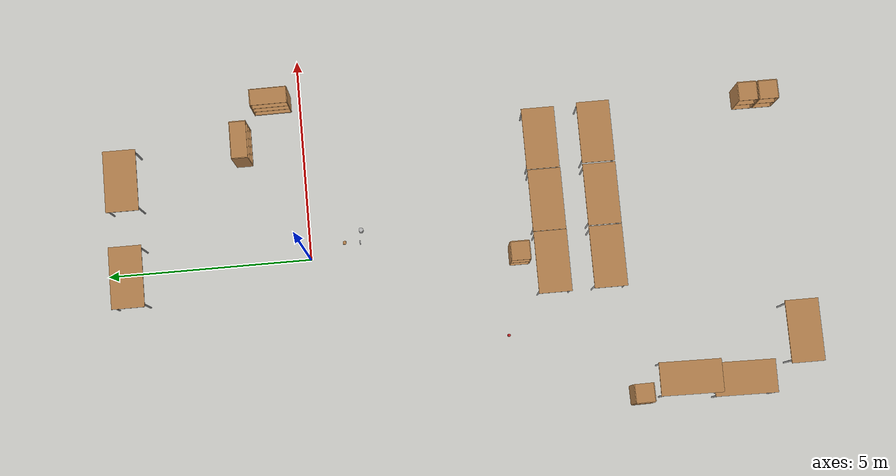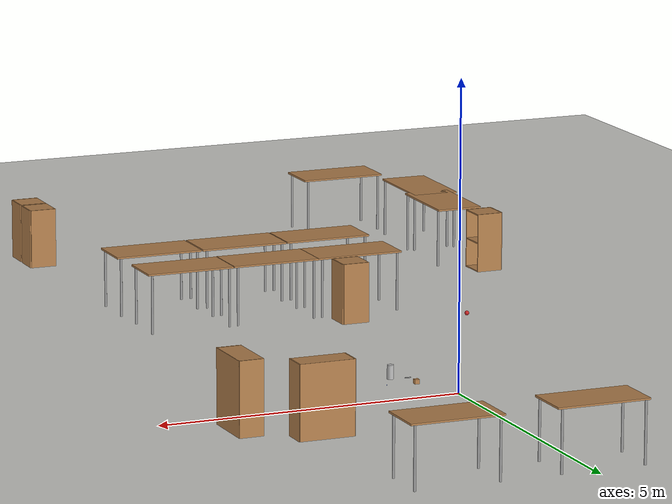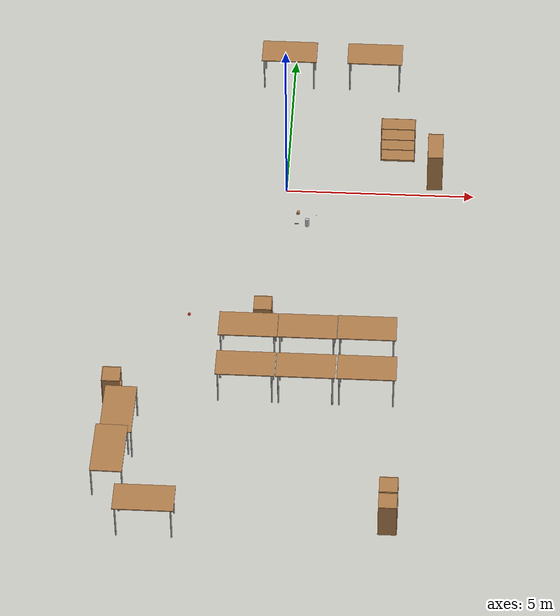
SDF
<sdf version="1.6">
 <world name="default">
  <light name="sun" type="directional">
   <pose>0 0 10 0 -0 0</pose>
   <diffuse>0.8 0.8 0.8 1</diffuse>
   <specular>0.2 0.2 0.2 1</specular>
   <attenuation>
    <range>1000</range>
    <constant>0.9</constant>
    <linear>0.01</linear>
    <quadratic>0.001</quadratic>
   </attenuation>
   <direction>-0.5 0.1 -0.9</direction>
  </light>
  <model name="ground_plane">
   <static>1</static>
   <link name="link">
    <collision name="collision">
     <geometry><plane><normal>0 0 1</normal><size>100 100</size></plane></geometry>
     <surface>
      <contact><collide_bitmask>65535</collide_bitmask></contact>
      <friction><ode><mu>100</mu><mu2>50</mu2></ode></friction>
     </surface>
    </collision>
    <visual name="visual">
     <cast_shadows>0</cast_shadows>
     <geometry><plane><normal>0 0 1</normal><size>100 100</size></plane></geometry>
     <material>
      <script><uri>file://media/materials/scripts/gazebo.material</uri><name>Gazebo/CeilingTiled</name></script>
     </material>
    </visual>
   </link>
  </model>
  <gravity>0 0 -9.8</gravity>
  <magnetic_field>6e-06 2.3e-05 -4.2e-05</magnetic_field>
  <atmosphere type="adiabatic"/>
  <physics name="default_physics" default="0" type="bullet">
   <max_step_size>0.001</max_step_size>
   <real_time_factor>1</real_time_factor>
   <real_time_update_rate>1000</real_time_update_rate>
  </physics>
  <scene><ambient>0.4 0.4 0.4 1</ambient><background>0.7 0.7 0.7 1</background><shadows>1</shadows></scene>
  <audio><device>default</device></audio>
  <spherical_coordinates>
   <surface_model>EARTH_WGS84</surface_model>
   <latitude_deg>0</latitude_deg>
   <longitude_deg>0</longitude_deg>
   <elevation>0</elevation>
   <heading_deg>0</heading_deg>
  </spherical_coordinates>
  <model name="bookshelf">
   <static>1</static>
   <link name="link">
    <inertial><mass>1</mass></inertial>
    <collision name="back">
     <pose>0 0.005 0.6 0 -0 0</pose>
     <geometry><box><size>0.9 0.01 1.2</size></box></geometry>
    </collision>
    <visual name="visual1">
     <pose>0 0.005 0.6 0 -0 0</pose>
     <geometry><box><size>0.9 0.01 1.2</size></box></geometry>
     <material>
      <script><uri>file://media/materials/scripts/gazebo.material</uri><name>Gazebo/Wood</name></script>
     </material>
    </visual>
    <collision name="left_side">
     <pose>0.45 -0.195 0.6 0 -0 0</pose>
     <geometry><box><size>0.02 0.4 1.2</size></box></geometry>
    </collision>
    <visual name="visual2">
     <pose>0.45 -0.195 0.6 0 -0 0</pose>
     <geometry><box><size>0.02 0.4 1.2</size></box></geometry>
     <material>
      <script><uri>file://media/materials/scripts/gazebo.material</uri><name>Gazebo/Wood</name></script>
     </material>
    </visual>
    <collision name="right_side">
     <pose>-0.45 -0.195 0.6 0 -0 0</pose>
     <geometry><box><size>0.02 0.4 1.2</size></box></geometry>
    </collision>
    <visual name="visual3">
     <pose>-0.45 -0.195 0.6 0 -0 0</pose>
     <geometry><box><size>0.02 0.4 1.2</size></box></geometry>
     <material>
      <script><uri>file://media/materials/scripts/gazebo.material</uri><name>Gazebo/Wood</name></script>
     </material>
    </visual>
    <collision name="bottom">
     <pose>0 -0.195 0.03 0 -0 0</pose>
     <geometry><box><size>0.88 0.4 0.06</size></box></geometry>
    </collision>
    <visual name="visual4">
     <pose>0 -0.195 0.03 0 -0 0</pose>
     <geometry><box><size>0.88 0.4 0.06</size></box></geometry>
     <material>
      <script><uri>file://media/materials/scripts/gazebo.material</uri><name>Gazebo/Wood</name></script>
     </material>
    </visual>
    <collision name="top">
     <pose>0 -0.195 1.19 0 -0 0</pose>
     <geometry><box><size>0.88 0.4 0.02</size></box></geometry>
    </collision>
    <visual name="visual5">
     <pose>0 -0.195 1.19 0 -0 0</pose>
     <geometry><box><size>0.88 0.4 0.02</size></box></geometry>
     <material>
      <script><uri>file://media/materials/scripts/gazebo.material</uri><name>Gazebo/Wood</name></script>
     </material>
    </visual>
    <collision name="low_shelf">
     <pose>0 -0.195 0.43 0 -0 0</pose>
     <geometry><box><size>0.88 0.4 0.02</size></box></geometry>
    </collision>
    <visual name="visual6">
     <pose>0 -0.195 0.43 0 -0 0</pose>
     <geometry><box><size>0.88 0.4 0.02</size></box></geometry>
     <material>
      <script><uri>file://media/materials/scripts/gazebo.material</uri><name>Gazebo/Wood</name></script>
     </material>
    </visual>
    <collision name="high_shelf">
     <pose>0 -0.195 0.8 0 -0 0</pose>
     <geometry><box><size>0.88 0.4 0.02</size></box></geometry>
    </collision>
    <visual name="visual7">
     <pose>0 -0.195 0.8 0 -0 0</pose>
     <geometry><box><size>0.88 0.4 0.02</size></box></geometry>
     <material>
      <script><uri>file://media/materials/scripts/gazebo.material</uri><name>Gazebo/Wood</name></script>
     </material>
    </visual>
   </link>
   <pose>2.92455 1.66571 0 0 -0 0</pose>
  </model>
  <model name="bookshelf_clone">
   <static>1</static>
   <link name="link">
    <inertial><mass>1</mass></inertial>
    <collision name="back">
     <pose>0 0.005 0.6 0 -0 0</pose>
     <geometry><box><size>0.9 0.01 1.2</size></box></geometry>
    </collision>
    <visual name="visual1">
     <pose>0 0.005 0.6 0 -0 0</pose>
     <geometry><box><size>0.9 0.01 1.2</size></box></geometry>
     <material>
      <script><uri>file://media/materials/scripts/gazebo.material</uri><name>Gazebo/Wood</name></script>
     </material>
    </visual>
    <collision name="left_side">
     <pose>0.45 -0.195 0.6 0 -0 0</pose>
     <geometry><box><size>0.02 0.4 1.2</size></box></geometry>
    </collision>
    <visual name="visual2">
     <pose>0.45 -0.195 0.6 0 -0 0</pose>
     <geometry><box><size>0.02 0.4 1.2</size></box></geometry>
     <material>
      <script><uri>file://media/materials/scripts/gazebo.material</uri><name>Gazebo/Wood</name></script>
     </material>
    </visual>
    <collision name="right_side">
     <pose>-0.45 -0.195 0.6 0 -0 0</pose>
     <geometry><box><size>0.02 0.4 1.2</size></box></geometry>
    </collision>
    <visual name="visual3">
     <pose>-0.45 -0.195 0.6 0 -0 0</pose>
     <geometry><box><size>0.02 0.4 1.2</size></box></geometry>
     <material>
      <script><uri>file://media/materials/scripts/gazebo.material</uri><name>Gazebo/Wood</name></script>
     </material>
    </visual>
    <collision name="bottom">
     <pose>0 -0.195 0.03 0 -0 0</pose>
     <geometry><box><size>0.88 0.4 0.06</size></box></geometry>
    </collision>
    <visual name="visual4">
     <pose>0 -0.195 0.03 0 -0 0</pose>
     <geometry><box><size>0.88 0.4 0.06</size></box></geometry>
     <material>
      <script><uri>file://media/materials/scripts/gazebo.material</uri><name>Gazebo/Wood</name></script>
     </material>
    </visual>
    <collision name="top">
     <pose>0 -0.195 1.19 0 -0 0</pose>
     <geometry><box><size>0.88 0.4 0.02</size></box></geometry>
    </collision>
    <visual name="visual5">
     <pose>0 -0.195 1.19 0 -0 0</pose>
     <geometry><box><size>0.88 0.4 0.02</size></box></geometry>
     <material>
      <script><uri>file://media/materials/scripts/gazebo.material</uri><name>Gazebo/Wood</name></script>
     </material>
    </visual>
    <collision name="low_shelf">
     <pose>0 -0.195 0.43 0 -0 0</pose>
     <geometry><box><size>0.88 0.4 0.02</size></box></geometry>
    </collision>
    <visual name="visual6">
     <pose>0 -0.195 0.43 0 -0 0</pose>
     <geometry><box><size>0.88 0.4 0.02</size></box></geometry>
     <material>
      <script><uri>file://media/materials/scripts/gazebo.material</uri><name>Gazebo/Wood</name></script>
     </material>
    </visual>
    <collision name="high_shelf">
     <pose>0 -0.195 0.8 0 -0 0</pose>
     <geometry><box><size>0.88 0.4 0.02</size></box></geometry>
    </collision>
    <visual name="visual7">
     <pose>0 -0.195 0.8 0 -0 0</pose>
     <geometry><box><size>0.88 0.4 0.02</size></box></geometry>
     <material>
      <script><uri>file://media/materials/scripts/gazebo.material</uri><name>Gazebo/Wood</name></script>
     </material>
    </visual>
   </link>
   <pose>4.13315 0.685647 0 0 0 -1.56138</pose>
  </model>
  <model name="cricket_ball">
   <link name="link">
    <pose>0 0 0.0375 0 -0 0</pose>
    <inertial>
     <mass>0.1467</mass>
     <inertia>
      <ixx>8.25187e-05</ixx>
      <ixy>0</ixy>
      <ixz>0</ixz>
      <iyy>8.25187e-05</iyy>
      <iyz>0</iyz>
      <izz>8.25187e-05</izz>
     </inertia>
    </inertial>
    <collision name="collision">
     <geometry><sphere><radius>0.0375</radius></sphere></geometry>
     <surface>
      <contact>
       <poissons_ratio>0.347</poissons_ratio>
       <elastic_modulus>8.8e+09</elastic_modulus>
       <ode><kp>100000</kp><kd>100</kd><max_vel>100</max_vel><min_depth>0.001</min_depth></ode>
      </contact>
      <friction>
       <torsional>
        <coefficient>1</coefficient>
        <use_patch_radius>0</use_patch_radius>
        <surface_radius>0.01</surface_radius>
       </torsional>
      </friction>
     </surface>
    </collision>
    <visual name="visual">
     <geometry><sphere><radius>0.0375</radius></sphere></geometry>
     <material>
      <script><uri>file://media/materials/scripts/gazebo.material</uri><name>Gazebo/Red</name></script>
     </material>
    </visual>
    <velocity_decay><linear>0</linear><angular>0.005</angular></velocity_decay>
   </link>
   <pose>-2.26594 -4.66116 0 0 -0 0</pose>
  </model>
  <model name="cabinet">
   <static>1</static>
   <link name="cabinet_bottom_plate">
    <inertial>
     <pose>0 0 -1 0 -0 0</pose>
     <inertia><ixx>2.05</ixx><ixy>0</ixy><ixz>0</ixz><iyy>2.05</iyy><iyz>0</iyz><izz>2.05</izz></inertia>
     <mass>25</mass>
    </inertial>
    <collision name="cabinet_bottom_plate_geom">
     <pose>0 0 0.01 0 -0 0</pose>
     <geometry><box><size>0.45 0.45 0.02</size></box></geometry>
    </collision>
    <visual name="cabinet_bottom_plate_geom_visual">
     <pose>0 0 0.01 0 -0 0</pose>
     <geometry><box><size>0.45 0.45 0.02</size></box></geometry>
     <material>
      <script><uri>file://media/materials/scripts/gazebo.material</uri><name>Gazebo/Wood</name></script>
     </material>
    </visual>
    <collision name="cabinet_bottom_plate_geom_cabinet_back_plate">
     <pose>0.235 0 0.51 0 -0 0</pose>
     <geometry><box><size>0.02 0.45 1.02</size></box></geometry>
    </collision>
    <visual name="cabinet_bottom_plate_geom_cabinet_back_plate_visual">
     <pose>0.235 0 0.51 0 -0 0</pose>
     <geometry><box><size>0.02 0.45 1.02</size></box></geometry>
     <material>
      <script><uri>file://media/materials/scripts/gazebo.material</uri><name>Gazebo/Wood</name></script>
     </material>
    </visual>
    <collision name="cabinet_bottom_plate_geom_cabinet_left_plate">
     <pose>0 0.235 0.51 0 -0 0</pose>
     <geometry><box><size>0.45 0.02 1.02</size></box></geometry>
    </collision>
    <visual name="cabinet_bottom_plate_geom_cabinet_left_plate_visual">
     <pose>0 0.235 0.51 0 -0 0</pose>
     <geometry><box><size>0.45 0.02 1.02</size></box></geometry>
     <material>
      <script><uri>file://media/materials/scripts/gazebo.material</uri><name>Gazebo/Wood</name></script>
     </material>
    </visual>
    <collision name="cabinet_bottom_plate_geom_cabinet_middle_plate">
     <pose>0 0 0.51 0 -0 0</pose>
     <geometry><box><size>0.45 0.45 0.02</size></box></geometry>
    </collision>
    <visual name="cabinet_bottom_plate_geom_cabinet_middle_plate_visual">
     <pose>0 0 0.51 0 -0 0</pose>
     <geometry><box><size>0.45 0.45 0.02</size></box></geometry>
     <material>
      <script><uri>file://media/materials/scripts/gazebo.material</uri><name>Gazebo/Wood</name></script>
     </material>
    </visual>
    <collision name="cabinet_bottom_plate_geom_cabinet_right_plate">
     <pose>0 -0.235 0.51 0 -0 0</pose>
     <geometry><box><size>0.45 0.02 1.02</size></box></geometry>
    </collision>
    <visual name="cabinet_bottom_plate_geom_cabinet_right_plate_visual">
     <pose>0 -0.235 0.51 0 -0 0</pose>
     <geometry><box><size>0.45 0.02 1.02</size></box></geometry>
     <material>
      <script><uri>file://media/materials/scripts/gazebo.material</uri><name>Gazebo/Wood</name></script>
     </material>
    </visual>
    <collision name="cabinet_bottom_plate_geom_cabinet_top_plate">
     <pose>0 0 1.01 0 -0 0</pose>
     <geometry><box><size>0.45 0.45 0.02</size></box></geometry>
    </collision>
    <visual name="cabinet_bottom_plate_geom_cabinet_top_plate_visual">
     <pose>0 0 1.01 0 -0 0</pose>
     <geometry><box><size>0.45 0.45 0.02</size></box></geometry>
     <material>
      <script><uri>file://media/materials/scripts/gazebo.material</uri><name>Gazebo/Wood</name></script>
     </material>
    </visual>
   </link>
   <pose>3.07967 -10.958 0 0 -0 0</pose>
  </model>
  <model name="cabinet_clone">
   <static>1</static>
   <link name="cabinet_bottom_plate">
    <inertial>
     <pose>0 0 -1 0 -0 0</pose>
     <inertia><ixx>2.05</ixx><ixy>0</ixy><ixz>0</ixz><iyy>2.05</iyy><iyz>0</iyz><izz>2.05</izz></inertia>
     <mass>25</mass>
    </inertial>
    <collision name="cabinet_bottom_plate_geom">
     <pose>0 0 0.01 0 -0 0</pose>
     <geometry><box><size>0.45 0.45 0.02</size></box></geometry>
    </collision>
    <visual name="cabinet_bottom_plate_geom_visual">
     <pose>0 0 0.01 0 -0 0</pose>
     <geometry><box><size>0.45 0.45 0.02</size></box></geometry>
     <material>
      <script><uri>file://media/materials/scripts/gazebo.material</uri><name>Gazebo/Wood</name></script>
     </material>
    </visual>
    <collision name="cabinet_bottom_plate_geom_cabinet_back_plate">
     <pose>0.235 0 0.51 0 -0 0</pose>
     <geometry><box><size>0.02 0.45 1.02</size></box></geometry>
    </collision>
    <visual name="cabinet_bottom_plate_geom_cabinet_back_plate_visual">
     <pose>0.235 0 0.51 0 -0 0</pose>
     <geometry><box><size>0.02 0.45 1.02</size></box></geometry>
     <material>
      <script><uri>file://media/materials/scripts/gazebo.material</uri><name>Gazebo/Wood</name></script>
     </material>
    </visual>
    <collision name="cabinet_bottom_plate_geom_cabinet_left_plate">
     <pose>0 0.235 0.51 0 -0 0</pose>
     <geometry><box><size>0.45 0.02 1.02</size></box></geometry>
    </collision>
    <visual name="cabinet_bottom_plate_geom_cabinet_left_plate_visual">
     <pose>0 0.235 0.51 0 -0 0</pose>
     <geometry><box><size>0.45 0.02 1.02</size></box></geometry>
     <material>
      <script><uri>file://media/materials/scripts/gazebo.material</uri><name>Gazebo/Wood</name></script>
     </material>
    </visual>
    <collision name="cabinet_bottom_plate_geom_cabinet_middle_plate">
     <pose>0 0 0.51 0 -0 0</pose>
     <geometry><box><size>0.45 0.45 0.02</size></box></geometry>
    </collision>
    <visual name="cabinet_bottom_plate_geom_cabinet_middle_plate_visual">
     <pose>0 0 0.51 0 -0 0</pose>
     <geometry><box><size>0.45 0.45 0.02</size></box></geometry>
     <material>
      <script><uri>file://media/materials/scripts/gazebo.material</uri><name>Gazebo/Wood</name></script>
     </material>
    </visual>
    <collision name="cabinet_bottom_plate_geom_cabinet_right_plate">
     <pose>0 -0.235 0.51 0 -0 0</pose>
     <geometry><box><size>0.45 0.02 1.02</size></box></geometry>
    </collision>
    <visual name="cabinet_bottom_plate_geom_cabinet_right_plate_visual">
     <pose>0 -0.235 0.51 0 -0 0</pose>
     <geometry><box><size>0.45 0.02 1.02</size></box></geometry>
     <material>
      <script><uri>file://media/materials/scripts/gazebo.material</uri><name>Gazebo/Wood</name></script>
     </material>
    </visual>
    <collision name="cabinet_bottom_plate_geom_cabinet_top_plate">
     <pose>0 0 1.01 0 -0 0</pose>
     <geometry><box><size>0.45 0.45 0.02</size></box></geometry>
    </collision>
    <visual name="cabinet_bottom_plate_geom_cabinet_top_plate_visual">
     <pose>0 0 1.01 0 -0 0</pose>
     <geometry><box><size>0.45 0.45 0.02</size></box></geometry>
     <material>
      <script><uri>file://media/materials/scripts/gazebo.material</uri><name>Gazebo/Wood</name></script>
     </material>
    </visual>
   </link>
   <pose>3.07862 -11.4628 0 0 -0 0</pose>
  </model>
  <model name="table">
   <static>1</static>
   <link name="link">
    <collision name="surface">
     <pose>0 0 1 0 -0 0</pose>
     <geometry><box><size>1.5 0.8 0.03</size></box></geometry>
     <surface><friction><ode><mu>0.6</mu><mu2>0.6</mu2></ode></friction></surface>
    </collision>
    <visual name="visual1">
     <pose>0 0 1 0 -0 0</pose>
     <geometry><box><size>1.5 0.8 0.03</size></box></geometry>
     <material>
      <script><uri>file://media/materials/scripts/gazebo.material</uri><name>Gazebo/Wood</name></script>
     </material>
    </visual>
    <collision name="front_left_leg">
     <pose>0.68 0.38 0.5 0 -0 0</pose>
     <geometry><cylinder><radius>0.02</radius><length>1</length></cylinder></geometry>
    </collision>
    <visual name="front_left_leg">
     <pose>0.68 0.38 0.5 0 -0 0</pose>
     <geometry><cylinder><radius>0.02</radius><length>1</length></cylinder></geometry>
     <material>
      <script><uri>file://media/materials/scripts/gazebo.material</uri><name>Gazebo/Grey</name></script>
     </material>
    </visual>
    <collision name="front_right_leg">
     <pose>0.68 -0.38 0.5 0 -0 0</pose>
     <geometry><cylinder><radius>0.02</radius><length>1</length></cylinder></geometry>
    </collision>
    <visual name="front_right_leg">
     <pose>0.68 -0.38 0.5 0 -0 0</pose>
     <geometry><cylinder><radius>0.02</radius><length>1</length></cylinder></geometry>
     <material>
      <script><uri>file://media/materials/scripts/gazebo.material</uri><name>Gazebo/Grey</name></script>
     </material>
    </visual>
    <collision name="back_right_leg">
     <pose>-0.68 -0.38 0.5 0 -0 0</pose>
     <geometry><cylinder><radius>0.02</radius><length>1</length></cylinder></geometry>
    </collision>
    <visual name="back_right_leg">
     <pose>-0.68 -0.38 0.5 0 -0 0</pose>
     <geometry><cylinder><radius>0.02</radius><length>1</length></cylinder></geometry>
     <material>
      <script><uri>file://media/materials/scripts/gazebo.material</uri><name>Gazebo/Grey</name></script>
     </material>
    </visual>
    <collision name="back_left_leg">
     <pose>-0.68 0.38 0.5 0 -0 0</pose>
     <geometry><cylinder><radius>0.02</radius><length>1</length></cylinder></geometry>
    </collision>
    <visual name="back_left_leg">
     <pose>-0.68 0.38 0.5 0 -0 0</pose>
     <geometry><cylinder><radius>0.02</radius><length>1</length></cylinder></geometry>
     <material>
      <script><uri>file://media/materials/scripts/gazebo.material</uri><name>Gazebo/Grey</name></script>
     </material>
    </visual>
   </link>
   <pose>2.1955 4.39475 0 0 -0 0</pose>
  </model>
  <model name="table_clone">
   <static>1</static>
   <link name="link">
    <collision name="surface">
     <pose>0 0 1 0 -0 0</pose>
     <geometry><box><size>1.5 0.8 0.03</size></box></geometry>
     <surface><friction><ode><mu>0.6</mu><mu2>0.6</mu2></ode></friction></surface>
    </collision>
    <visual name="visual1">
     <pose>0 0 1 0 -0 0</pose>
     <geometry><box><size>1.5 0.8 0.03</size></box></geometry>
     <material>
      <script><uri>file://media/materials/scripts/gazebo.material</uri><name>Gazebo/Wood</name></script>
     </material>
    </visual>
    <collision name="front_left_leg">
     <pose>0.68 0.38 0.5 0 -0 0</pose>
     <geometry><cylinder><radius>0.02</radius><length>1</length></cylinder></geometry>
    </collision>
    <visual name="front_left_leg">
     <pose>0.68 0.38 0.5 0 -0 0</pose>
     <geometry><cylinder><radius>0.02</radius><length>1</length></cylinder></geometry>
     <material>
      <script><uri>file://media/materials/scripts/gazebo.material</uri><name>Gazebo/Grey</name></script>
     </material>
    </visual>
    <collision name="front_right_leg">
     <pose>0.68 -0.38 0.5 0 -0 0</pose>
     <geometry><cylinder><radius>0.02</radius><length>1</length></cylinder></geometry>
    </collision>
    <visual name="front_right_leg">
     <pose>0.68 -0.38 0.5 0 -0 0</pose>
     <geometry><cylinder><radius>0.02</radius><length>1</length></cylinder></geometry>
     <material>
      <script><uri>file://media/materials/scripts/gazebo.material</uri><name>Gazebo/Grey</name></script>
     </material>
    </visual>
    <collision name="back_right_leg">
     <pose>-0.68 -0.38 0.5 0 -0 0</pose>
     <geometry><cylinder><radius>0.02</radius><length>1</length></cylinder></geometry>
    </collision>
    <visual name="back_right_leg">
     <pose>-0.68 -0.38 0.5 0 -0 0</pose>
     <geometry><cylinder><radius>0.02</radius><length>1</length></cylinder></geometry>
     <material>
      <script><uri>file://media/materials/scripts/gazebo.material</uri><name>Gazebo/Grey</name></script>
     </material>
    </visual>
    <collision name="back_left_leg">
     <pose>-0.68 0.38 0.5 0 -0 0</pose>
     <geometry><cylinder><radius>0.02</radius><length>1</length></cylinder></geometry>
    </collision>
    <visual name="back_left_leg">
     <pose>-0.68 0.38 0.5 0 -0 0</pose>
     <geometry><cylinder><radius>0.02</radius><length>1</length></cylinder></geometry>
     <material>
      <script><uri>file://media/materials/scripts/gazebo.material</uri><name>Gazebo/Grey</name></script>
     </material>
    </visual>
   </link>
   <pose>-0.149188 4.38929 0 0 -0 0</pose>
  </model>
  <model name="marble_1_5cm">
   <link name="link">
    <pose>0 0 0.0075 0 -0 0</pose>
    <inertial>
     <mass>0.0062</mass>
     <inertia>
      <ixx>1.395e-07</ixx>
      <ixy>0</ixy>
      <ixz>0</ixz>
      <iyy>1.395e-07</iyy>
      <iyz>0</iyz>
      <izz>1.395e-07</izz>
     </inertia>
    </inertial>
    <collision name="collision">
     <geometry><sphere><radius>0.0075</radius></sphere></geometry>
     <surface>
      <contact>
       <poissons_ratio>0.22</poissons_ratio>
       <elastic_modulus>5.1e+10</elastic_modulus>
       <ode><kp>100000</kp><kd>100</kd><max_vel>100</max_vel><min_depth>0.001</min_depth></ode>
      </contact>
      <friction>
       <torsional>
        <coefficient>1</coefficient>
        <use_patch_radius>0</use_patch_radius>
        <surface_radius>0.01</surface_radius>
       </torsional>
      </friction>
     </surface>
    </collision>
    <visual name="visual">
     <geometry><sphere><radius>0.0075</radius></sphere></geometry>
     <material>
      <script><uri>file://media/materials/scripts/gazebo.material</uri><name>Gazebo/Blue</name></script>
     </material>
    </visual>
    <velocity_decay><linear>0</linear><angular>0.005</angular></velocity_decay>
   </link>
   <pose>0.837053 -0.89144 0 0 -0 0</pose>
  </model>
  <model name="cabinet_0">
   <static>1</static>
   <link name="cabinet_bottom_plate">
    <inertial>
     <pose>0 0 -1 0 -0 0</pose>
     <inertia><ixx>2.05</ixx><ixy>0</ixy><ixz>0</ixz><iyy>2.05</iyy><iyz>0</iyz><izz>2.05</izz></inertia>
     <mass>25</mass>
    </inertial>
    <collision name="cabinet_bottom_plate_geom">
     <pose>0 0 0.01 0 -0 0</pose>
     <geometry><box><size>0.45 0.45 0.02</size></box></geometry>
    </collision>
    <visual name="cabinet_bottom_plate_geom_visual">
     <pose>0 0 0.01 0 -0 0</pose>
     <geometry><box><size>0.45 0.45 0.02</size></box></geometry>
     <material>
      <script><uri>file://media/materials/scripts/gazebo.material</uri><name>Gazebo/Wood</name></script>
     </material>
    </visual>
    <collision name="cabinet_bottom_plate_geom_cabinet_back_plate">
     <pose>0.235 0 0.51 0 -0 0</pose>
     <geometry><box><size>0.02 0.45 1.02</size></box></geometry>
    </collision>
    <visual name="cabinet_bottom_plate_geom_cabinet_back_plate_visual">
     <pose>0.235 0 0.51 0 -0 0</pose>
     <geometry><box><size>0.02 0.45 1.02</size></box></geometry>
     <material>
      <script><uri>file://media/materials/scripts/gazebo.material</uri><name>Gazebo/Wood</name></script>
     </material>
    </visual>
    <collision name="cabinet_bottom_plate_geom_cabinet_left_plate">
     <pose>0 0.235 0.51 0 -0 0</pose>
     <geometry><box><size>0.45 0.02 1.02</size></box></geometry>
    </collision>
    <visual name="cabinet_bottom_plate_geom_cabinet_left_plate_visual">
     <pose>0 0.235 0.51 0 -0 0</pose>
     <geometry><box><size>0.45 0.02 1.02</size></box></geometry>
     <material>
      <script><uri>file://media/materials/scripts/gazebo.material</uri><name>Gazebo/Wood</name></script>
     </material>
    </visual>
    <collision name="cabinet_bottom_plate_geom_cabinet_middle_plate">
     <pose>0 0 0.51 0 -0 0</pose>
     <geometry><box><size>0.45 0.45 0.02</size></box></geometry>
    </collision>
    <visual name="cabinet_bottom_plate_geom_cabinet_middle_plate_visual">
     <pose>0 0 0.51 0 -0 0</pose>
     <geometry><box><size>0.45 0.45 0.02</size></box></geometry>
     <material>
      <script><uri>file://media/materials/scripts/gazebo.material</uri><name>Gazebo/Wood</name></script>
     </material>
    </visual>
    <collision name="cabinet_bottom_plate_geom_cabinet_right_plate">
     <pose>0 -0.235 0.51 0 -0 0</pose>
     <geometry><box><size>0.45 0.02 1.02</size></box></geometry>
    </collision>
    <visual name="cabinet_bottom_plate_geom_cabinet_right_plate_visual">
     <pose>0 -0.235 0.51 0 -0 0</pose>
     <geometry><box><size>0.45 0.02 1.02</size></box></geometry>
     <material>
      <script><uri>file://media/materials/scripts/gazebo.material</uri><name>Gazebo/Wood</name></script>
     </material>
    </visual>
    <collision name="cabinet_bottom_plate_geom_cabinet_top_plate">
     <pose>0 0 1.01 0 -0 0</pose>
     <geometry><box><size>0.45 0.45 0.02</size></box></geometry>
    </collision>
    <visual name="cabinet_bottom_plate_geom_cabinet_top_plate_visual">
     <pose>0 0 1.01 0 -0 0</pose>
     <geometry><box><size>0.45 0.45 0.02</size></box></geometry>
     <material>
      <script><uri>file://media/materials/scripts/gazebo.material</uri><name>Gazebo/Wood</name></script>
     </material>
    </visual>
   </link>
   <pose>-0.333135 -5.07678 0 0 -0 0</pose>
  </model>
  <model name="cabinet_0_clone">
   <static>1</static>
   <link name="cabinet_bottom_plate">
    <inertial>
     <pose>0 0 -1 0 -0 0</pose>
     <inertia><ixx>2.05</ixx><ixy>0</ixy><ixz>0</ixz><iyy>2.05</iyy><iyz>0</iyz><izz>2.05</izz></inertia>
     <mass>25</mass>
    </inertial>
    <collision name="cabinet_bottom_plate_geom">
     <pose>0 0 0.01 0 -0 0</pose>
     <geometry><box><size>0.45 0.45 0.02</size></box></geometry>
    </collision>
    <visual name="cabinet_bottom_plate_geom_visual">
     <pose>0 0 0.01 0 -0 0</pose>
     <geometry><box><size>0.45 0.45 0.02</size></box></geometry>
     <material>
      <script><uri>file://media/materials/scripts/gazebo.material</uri><name>Gazebo/Wood</name></script>
     </material>
    </visual>
    <collision name="cabinet_bottom_plate_geom_cabinet_back_plate">
     <pose>0.235 0 0.51 0 -0 0</pose>
     <geometry><box><size>0.02 0.45 1.02</size></box></geometry>
    </collision>
    <visual name="cabinet_bottom_plate_geom_cabinet_back_plate_visual">
     <pose>0.235 0 0.51 0 -0 0</pose>
     <geometry><box><size>0.02 0.45 1.02</size></box></geometry>
     <material>
      <script><uri>file://media/materials/scripts/gazebo.material</uri><name>Gazebo/Wood</name></script>
     </material>
    </visual>
    <collision name="cabinet_bottom_plate_geom_cabinet_left_plate">
     <pose>0 0.235 0.51 0 -0 0</pose>
     <geometry><box><size>0.45 0.02 1.02</size></box></geometry>
    </collision>
    <visual name="cabinet_bottom_plate_geom_cabinet_left_plate_visual">
     <pose>0 0.235 0.51 0 -0 0</pose>
     <geometry><box><size>0.45 0.02 1.02</size></box></geometry>
     <material>
      <script><uri>file://media/materials/scripts/gazebo.material</uri><name>Gazebo/Wood</name></script>
     </material>
    </visual>
    <collision name="cabinet_bottom_plate_geom_cabinet_middle_plate">
     <pose>0 0 0.51 0 -0 0</pose>
     <geometry><box><size>0.45 0.45 0.02</size></box></geometry>
    </collision>
    <visual name="cabinet_bottom_plate_geom_cabinet_middle_plate_visual">
     <pose>0 0 0.51 0 -0 0</pose>
     <geometry><box><size>0.45 0.45 0.02</size></box></geometry>
     <material>
      <script><uri>file://media/materials/scripts/gazebo.material</uri><name>Gazebo/Wood</name></script>
     </material>
    </visual>
    <collision name="cabinet_bottom_plate_geom_cabinet_right_plate">
     <pose>0 -0.235 0.51 0 -0 0</pose>
     <geometry><box><size>0.45 0.02 1.02</size></box></geometry>
    </collision>
    <visual name="cabinet_bottom_plate_geom_cabinet_right_plate_visual">
     <pose>0 -0.235 0.51 0 -0 0</pose>
     <geometry><box><size>0.45 0.02 1.02</size></box></geometry>
     <material>
      <script><uri>file://media/materials/scripts/gazebo.material</uri><name>Gazebo/Wood</name></script>
     </material>
    </visual>
    <collision name="cabinet_bottom_plate_geom_cabinet_top_plate">
     <pose>0 0 1.01 0 -0 0</pose>
     <geometry><box><size>0.45 0.45 0.02</size></box></geometry>
    </collision>
    <visual name="cabinet_bottom_plate_geom_cabinet_top_plate_visual">
     <pose>0 0 1.01 0 -0 0</pose>
     <geometry><box><size>0.45 0.45 0.02</size></box></geometry>
     <material>
      <script><uri>file://media/materials/scripts/gazebo.material</uri><name>Gazebo/Wood</name></script>
     </material>
    </visual>
   </link>
   <pose>-3.96884 -7.69394 0 0 0 -3.13022</pose>
  </model>
  <model name="beer">
   <link name="link">
    <pose>0 0 0.115 0 -0 0</pose>
    <inertial>
     <mass>0.39</mass>
     <inertia><ixx>0.00058</ixx><ixy>0</ixy><ixz>0</ixz><iyy>0.00058</iyy><iyz>0</iyz><izz>0.00019</izz></inertia>
    </inertial>
    <collision name="collision">
     <geometry><cylinder><radius>0.055</radius><length>0.23</length></cylinder></geometry>
    </collision>
    <visual name="visual">
     <geometry><cylinder><radius>0.055</radius><length>0.23</length></cylinder></geometry>
     <material>
      <script>
       <uri>model://beer/materials/scripts</uri>
       <uri>model://beer/materials/textures</uri>
       <name>Beer/Diffuse</name>
      </script>
     </material>
    </visual>
   </link>
   <pose>0.612864 -1.26897 0 0 -0 0</pose>
  </model>
  <model name="wood_cube_7_5cm">
   <link name="link">
    <pose>0 0 0.0375 0 -0 0</pose>
    <inertial>
     <mass>0.2249</mass>
     <inertia>
      <ixx>0.000210844</ixx>
      <ixy>0</ixy>
      <ixz>0</ixz>
      <iyy>0.000210844</iyy>
      <iyz>0</iyz>
      <izz>0.000210844</izz>
     </inertia>
    </inertial>
    <collision name="collision">
     <geometry><box><size>0.075 0.075 0.075</size></box></geometry>
     <surface>
      <contact>
       <poissons_ratio>0.347</poissons_ratio>
       <elastic_modulus>8.8e+09</elastic_modulus>
       <ode><kp>100000</kp><kd>100</kd><max_vel>100</max_vel><min_depth>0.001</min_depth></ode>
      </contact>
      <friction>
       <torsional>
        <coefficient>1</coefficient>
        <use_patch_radius>0</use_patch_radius>
        <surface_radius>0.01</surface_radius>
       </torsional>
      </friction>
     </surface>
    </collision>
    <visual name="visual">
     <geometry><box><size>0.075 0.075 0.075</size></box></geometry>
     <material>
      <script><uri>file://media/materials/scripts/gazebo.material</uri><name>Gazebo/Wood</name></script>
     </material>
    </visual>
   </link>
   <pose>0.354154 -0.837382 0 0 -0 0</pose>
  </model>
  <model name="stone_10_2_5_1cm">
   <link name="link">
    <pose>0 0 0.005 0 -0 0</pose>
    <inertial>
     <mass>0.0628</mass>
     <inertia>
      <ixx>3.79417e-06</ixx>
      <ixy>0</ixy>
      <ixz>0</ixz>
      <iyy>5.28567e-05</iyy>
      <iyz>0</iyz>
      <izz>5.56042e-05</izz>
     </inertia>
    </inertial>
    <collision name="collision">
     <geometry><box><size>0.1 0.025 0.01</size></box></geometry>
     <surface>
      <contact>
       <poissons_ratio>0.15</poissons_ratio>
       <elastic_modulus>8e+10</elastic_modulus>
       <ode><kp>100000</kp><kd>100</kd><max_vel>100</max_vel><min_depth>0.001</min_depth></ode>
      </contact>
      <friction>
       <torsional>
        <coefficient>1</coefficient>
        <use_patch_radius>0</use_patch_radius>
        <surface_radius>0.01</surface_radius>
       </torsional>
      </friction>
     </surface>
    </collision>
    <visual name="visual">
     <geometry><box><size>0.1 0.025 0.01</size></box></geometry>
     <material>
      <script><uri>file://media/materials/scripts/gazebo.material</uri><name>Gazebo/Grey</name></script>
     </material>
    </visual>
   </link>
   <pose>0.330945 -1.21735 0 0 -0 0</pose>
  </model>
  <model name="table_0">
   <static>1</static>
   <link name="link">
    <collision name="surface">
     <pose>0 0 1 0 -0 0</pose>
     <geometry><box><size>1.5 0.8 0.03</size></box></geometry>
     <surface><friction><ode><mu>0.6</mu><mu2>0.6</mu2></ode></friction></surface>
    </collision>
    <visual name="visual1">
     <pose>0 0 1 0 -0 0</pose>
     <geometry><box><size>1.5 0.8 0.03</size></box></geometry>
     <material>
      <script><uri>file://media/materials/scripts/gazebo.material</uri><name>Gazebo/Wood</name></script>
     </material>
    </visual>
    <collision name="front_left_leg">
     <pose>0.68 0.38 0.5 0 -0 0</pose>
     <geometry><cylinder><radius>0.02</radius><length>1</length></cylinder></geometry>
    </collision>
    <visual name="front_left_leg">
     <pose>0.68 0.38 0.5 0 -0 0</pose>
     <geometry><cylinder><radius>0.02</radius><length>1</length></cylinder></geometry>
     <material>
      <script><uri>file://media/materials/scripts/gazebo.material</uri><name>Gazebo/Grey</name></script>
     </material>
    </visual>
    <collision name="front_right_leg">
     <pose>0.68 -0.38 0.5 0 -0 0</pose>
     <geometry><cylinder><radius>0.02</radius><length>1</length></cylinder></geometry>
    </collision>
    <visual name="front_right_leg">
     <pose>0.68 -0.38 0.5 0 -0 0</pose>
     <geometry><cylinder><radius>0.02</radius><length>1</length></cylinder></geometry>
     <material>
      <script><uri>file://media/materials/scripts/gazebo.material</uri><name>Gazebo/Grey</name></script>
     </material>
    </visual>
    <collision name="back_right_leg">
     <pose>-0.68 -0.38 0.5 0 -0 0</pose>
     <geometry><cylinder><radius>0.02</radius><length>1</length></cylinder></geometry>
    </collision>
    <visual name="back_right_leg">
     <pose>-0.68 -0.38 0.5 0 -0 0</pose>
     <geometry><cylinder><radius>0.02</radius><length>1</length></cylinder></geometry>
     <material>
      <script><uri>file://media/materials/scripts/gazebo.material</uri><name>Gazebo/Grey</name></script>
     </material>
    </visual>
    <collision name="back_left_leg">
     <pose>-0.68 0.38 0.5 0 -0 0</pose>
     <geometry><cylinder><radius>0.02</radius><length>1</length></cylinder></geometry>
    </collision>
    <visual name="back_left_leg">
     <pose>-0.68 0.38 0.5 0 -0 0</pose>
     <geometry><cylinder><radius>0.02</radius><length>1</length></cylinder></geometry>
     <material>
      <script><uri>file://media/materials/scripts/gazebo.material</uri><name>Gazebo/Grey</name></script>
     </material>
    </visual>
   </link>
   <pose>-0.655073 -5.8259 0 0 -0 0</pose>
  </model>
  <model name="table_0_clone">
   <static>1</static>
   <link name="link">
    <collision name="surface">
     <pose>0 0 1 0 -0 0</pose>
     <geometry><box><size>1.5 0.8 0.03</size></box></geometry>
     <surface><friction><ode><mu>0.6</mu><mu2>0.6</mu2></ode></friction></surface>
    </collision>
    <visual name="visual1">
     <pose>0 0 1 0 -0 0</pose>
     <geometry><box><size>1.5 0.8 0.03</size></box></geometry>
     <material>
      <script><uri>file://media/materials/scripts/gazebo.material</uri><name>Gazebo/Wood</name></script>
     </material>
    </visual>
    <collision name="front_left_leg">
     <pose>0.68 0.38 0.5 0 -0 0</pose>
     <geometry><cylinder><radius>0.02</radius><length>1</length></cylinder></geometry>
    </collision>
    <visual name="front_left_leg">
     <pose>0.68 0.38 0.5 0 -0 0</pose>
     <geometry><cylinder><radius>0.02</radius><length>1</length></cylinder></geometry>
     <material>
      <script><uri>file://media/materials/scripts/gazebo.material</uri><name>Gazebo/Grey</name></script>
     </material>
    </visual>
    <collision name="front_right_leg">
     <pose>0.68 -0.38 0.5 0 -0 0</pose>
     <geometry><cylinder><radius>0.02</radius><length>1</length></cylinder></geometry>
    </collision>
    <visual name="front_right_leg">
     <pose>0.68 -0.38 0.5 0 -0 0</pose>
     <geometry><cylinder><radius>0.02</radius><length>1</length></cylinder></geometry>
     <material>
      <script><uri>file://media/materials/scripts/gazebo.material</uri><name>Gazebo/Grey</name></script>
     </material>
    </visual>
    <collision name="back_right_leg">
     <pose>-0.68 -0.38 0.5 0 -0 0</pose>
     <geometry><cylinder><radius>0.02</radius><length>1</length></cylinder></geometry>
    </collision>
    <visual name="back_right_leg">
     <pose>-0.68 -0.38 0.5 0 -0 0</pose>
     <geometry><cylinder><radius>0.02</radius><length>1</length></cylinder></geometry>
     <material>
      <script><uri>file://media/materials/scripts/gazebo.material</uri><name>Gazebo/Grey</name></script>
     </material>
    </visual>
    <collision name="back_left_leg">
     <pose>-0.68 0.38 0.5 0 -0 0</pose>
     <geometry><cylinder><radius>0.02</radius><length>1</length></cylinder></geometry>
    </collision>
    <visual name="back_left_leg">
     <pose>-0.68 0.38 0.5 0 -0 0</pose>
     <geometry><cylinder><radius>0.02</radius><length>1</length></cylinder></geometry>
     <material>
      <script><uri>file://media/materials/scripts/gazebo.material</uri><name>Gazebo/Grey</name></script>
     </material>
    </visual>
   </link>
   <pose>0.853078 -5.82201 0 0 -0 0</pose>
  </model>
  <model name="table_0_clone_0">
   <static>1</static>
   <link name="link">
    <collision name="surface">
     <pose>0 0 1 0 -0 0</pose>
     <geometry><box><size>1.5 0.8 0.03</size></box></geometry>
     <surface><friction><ode><mu>0.6</mu><mu2>0.6</mu2></ode></friction></surface>
    </collision>
    <visual name="visual1">
     <pose>0 0 1 0 -0 0</pose>
     <geometry><box><size>1.5 0.8 0.03</size></box></geometry>
     <material>
      <script><uri>file://media/materials/scripts/gazebo.material</uri><name>Gazebo/Wood</name></script>
     </material>
    </visual>
    <collision name="front_left_leg">
     <pose>0.68 0.38 0.5 0 -0 0</pose>
     <geometry><cylinder><radius>0.02</radius><length>1</length></cylinder></geometry>
    </collision>
    <visual name="front_left_leg">
     <pose>0.68 0.38 0.5 0 -0 0</pose>
     <geometry><cylinder><radius>0.02</radius><length>1</length></cylinder></geometry>
     <material>
      <script><uri>file://media/materials/scripts/gazebo.material</uri><name>Gazebo/Grey</name></script>
     </material>
    </visual>
    <collision name="front_right_leg">
     <pose>0.68 -0.38 0.5 0 -0 0</pose>
     <geometry><cylinder><radius>0.02</radius><length>1</length></cylinder></geometry>
    </collision>
    <visual name="front_right_leg">
     <pose>0.68 -0.38 0.5 0 -0 0</pose>
     <geometry><cylinder><radius>0.02</radius><length>1</length></cylinder></geometry>
     <material>
      <script><uri>file://media/materials/scripts/gazebo.material</uri><name>Gazebo/Grey</name></script>
     </material>
    </visual>
    <collision name="back_right_leg">
     <pose>-0.68 -0.38 0.5 0 -0 0</pose>
     <geometry><cylinder><radius>0.02</radius><length>1</length></cylinder></geometry>
    </collision>
    <visual name="back_right_leg">
     <pose>-0.68 -0.38 0.5 0 -0 0</pose>
     <geometry><cylinder><radius>0.02</radius><length>1</length></cylinder></geometry>
     <material>
      <script><uri>file://media/materials/scripts/gazebo.material</uri><name>Gazebo/Grey</name></script>
     </material>
    </visual>
    <collision name="back_left_leg">
     <pose>-0.68 0.38 0.5 0 -0 0</pose>
     <geometry><cylinder><radius>0.02</radius><length>1</length></cylinder></geometry>
    </collision>
    <visual name="back_left_leg">
     <pose>-0.68 0.38 0.5 0 -0 0</pose>
     <geometry><cylinder><radius>0.02</radius><length>1</length></cylinder></geometry>
     <material>
      <script><uri>file://media/materials/scripts/gazebo.material</uri><name>Gazebo/Grey</name></script>
     </material>
    </visual>
   </link>
   <pose>2.3681 -5.81013 0 0 -0 0</pose>
  </model>
  <model name="table_0_clone_1">
   <static>1</static>
   <link name="link">
    <collision name="surface">
     <pose>0 0 1 0 -0 0</pose>
     <geometry><box><size>1.5 0.8 0.03</size></box></geometry>
     <surface><friction><ode><mu>0.6</mu><mu2>0.6</mu2></ode></friction></surface>
    </collision>
    <visual name="visual1">
     <pose>0 0 1 0 -0 0</pose>
     <geometry><box><size>1.5 0.8 0.03</size></box></geometry>
     <material>
      <script><uri>file://media/materials/scripts/gazebo.material</uri><name>Gazebo/Wood</name></script>
     </material>
    </visual>
    <collision name="front_left_leg">
     <pose>0.68 0.38 0.5 0 -0 0</pose>
     <geometry><cylinder><radius>0.02</radius><length>1</length></cylinder></geometry>
    </collision>
    <visual name="front_left_leg">
     <pose>0.68 0.38 0.5 0 -0 0</pose>
     <geometry><cylinder><radius>0.02</radius><length>1</length></cylinder></geometry>
     <material>
      <script><uri>file://media/materials/scripts/gazebo.material</uri><name>Gazebo/Grey</name></script>
     </material>
    </visual>
    <collision name="front_right_leg">
     <pose>0.68 -0.38 0.5 0 -0 0</pose>
     <geometry><cylinder><radius>0.02</radius><length>1</length></cylinder></geometry>
    </collision>
    <visual name="front_right_leg">
     <pose>0.68 -0.38 0.5 0 -0 0</pose>
     <geometry><cylinder><radius>0.02</radius><length>1</length></cylinder></geometry>
     <material>
      <script><uri>file://media/materials/scripts/gazebo.material</uri><name>Gazebo/Grey</name></script>
     </material>
    </visual>
    <collision name="back_right_leg">
     <pose>-0.68 -0.38 0.5 0 -0 0</pose>
     <geometry><cylinder><radius>0.02</radius><length>1</length></cylinder></geometry>
    </collision>
    <visual name="back_right_leg">
     <pose>-0.68 -0.38 0.5 0 -0 0</pose>
     <geometry><cylinder><radius>0.02</radius><length>1</length></cylinder></geometry>
     <material>
      <script><uri>file://media/materials/scripts/gazebo.material</uri><name>Gazebo/Grey</name></script>
     </material>
    </visual>
    <collision name="back_left_leg">
     <pose>-0.68 0.38 0.5 0 -0 0</pose>
     <geometry><cylinder><radius>0.02</radius><length>1</length></cylinder></geometry>
    </collision>
    <visual name="back_left_leg">
     <pose>-0.68 0.38 0.5 0 -0 0</pose>
     <geometry><cylinder><radius>0.02</radius><length>1</length></cylinder></geometry>
     <material>
      <script><uri>file://media/materials/scripts/gazebo.material</uri><name>Gazebo/Grey</name></script>
     </material>
    </visual>
   </link>
   <pose>-0.641993 -7.16321 0 0 -0 0</pose>
  </model>
  <model name="table_0_clone_2">
   <static>1</static>
   <link name="link">
    <collision name="surface">
     <pose>0 0 1 0 -0 0</pose>
     <geometry><box><size>1.5 0.8 0.03</size></box></geometry>
     <surface><friction><ode><mu>0.6</mu><mu2>0.6</mu2></ode></friction></surface>
    </collision>
    <visual name="visual1">
     <pose>0 0 1 0 -0 0</pose>
     <geometry><box><size>1.5 0.8 0.03</size></box></geometry>
     <material>
      <script><uri>file://media/materials/scripts/gazebo.material</uri><name>Gazebo/Wood</name></script>
     </material>
    </visual>
    <collision name="front_left_leg">
     <pose>0.68 0.38 0.5 0 -0 0</pose>
     <geometry><cylinder><radius>0.02</radius><length>1</length></cylinder></geometry>
    </collision>
    <visual name="front_left_leg">
     <pose>0.68 0.38 0.5 0 -0 0</pose>
     <geometry><cylinder><radius>0.02</radius><length>1</length></cylinder></geometry>
     <material>
      <script><uri>file://media/materials/scripts/gazebo.material</uri><name>Gazebo/Grey</name></script>
     </material>
    </visual>
    <collision name="front_right_leg">
     <pose>0.68 -0.38 0.5 0 -0 0</pose>
     <geometry><cylinder><radius>0.02</radius><length>1</length></cylinder></geometry>
    </collision>
    <visual name="front_right_leg">
     <pose>0.68 -0.38 0.5 0 -0 0</pose>
     <geometry><cylinder><radius>0.02</radius><length>1</length></cylinder></geometry>
     <material>
      <script><uri>file://media/materials/scripts/gazebo.material</uri><name>Gazebo/Grey</name></script>
     </material>
    </visual>
    <collision name="back_right_leg">
     <pose>-0.68 -0.38 0.5 0 -0 0</pose>
     <geometry><cylinder><radius>0.02</radius><length>1</length></cylinder></geometry>
    </collision>
    <visual name="back_right_leg">
     <pose>-0.68 -0.38 0.5 0 -0 0</pose>
     <geometry><cylinder><radius>0.02</radius><length>1</length></cylinder></geometry>
     <material>
      <script><uri>file://media/materials/scripts/gazebo.material</uri><name>Gazebo/Grey</name></script>
     </material>
    </visual>
    <collision name="back_left_leg">
     <pose>-0.68 0.38 0.5 0 -0 0</pose>
     <geometry><cylinder><radius>0.02</radius><length>1</length></cylinder></geometry>
    </collision>
    <visual name="back_left_leg">
     <pose>-0.68 0.38 0.5 0 -0 0</pose>
     <geometry><cylinder><radius>0.02</radius><length>1</length></cylinder></geometry>
     <material>
      <script><uri>file://media/materials/scripts/gazebo.material</uri><name>Gazebo/Grey</name></script>
     </material>
    </visual>
   </link>
   <pose>0.879871 -7.16273 0 0 -0 0</pose>
  </model>
  <model name="table_0_clone_3">
   <static>1</static>
   <link name="link">
    <collision name="surface">
     <pose>0 0 1 0 -0 0</pose>
     <geometry><box><size>1.5 0.8 0.03</size></box></geometry>
     <surface><friction><ode><mu>0.6</mu><mu2>0.6</mu2></ode></friction></surface>
    </collision>
    <visual name="visual1">
     <pose>0 0 1 0 -0 0</pose>
     <geometry><box><size>1.5 0.8 0.03</size></box></geometry>
     <material>
      <script><uri>file://media/materials/scripts/gazebo.material</uri><name>Gazebo/Wood</name></script>
     </material>
    </visual>
    <collision name="front_left_leg">
     <pose>0.68 0.38 0.5 0 -0 0</pose>
     <geometry><cylinder><radius>0.02</radius><length>1</length></cylinder></geometry>
    </collision>
    <visual name="front_left_leg">
     <pose>0.68 0.38 0.5 0 -0 0</pose>
     <geometry><cylinder><radius>0.02</radius><length>1</length></cylinder></geometry>
     <material>
      <script><uri>file://media/materials/scripts/gazebo.material</uri><name>Gazebo/Grey</name></script>
     </material>
    </visual>
    <collision name="front_right_leg">
     <pose>0.68 -0.38 0.5 0 -0 0</pose>
     <geometry><cylinder><radius>0.02</radius><length>1</length></cylinder></geometry>
    </collision>
    <visual name="front_right_leg">
     <pose>0.68 -0.38 0.5 0 -0 0</pose>
     <geometry><cylinder><radius>0.02</radius><length>1</length></cylinder></geometry>
     <material>
      <script><uri>file://media/materials/scripts/gazebo.material</uri><name>Gazebo/Grey</name></script>
     </material>
    </visual>
    <collision name="back_right_leg">
     <pose>-0.68 -0.38 0.5 0 -0 0</pose>
     <geometry><cylinder><radius>0.02</radius><length>1</length></cylinder></geometry>
    </collision>
    <visual name="back_right_leg">
     <pose>-0.68 -0.38 0.5 0 -0 0</pose>
     <geometry><cylinder><radius>0.02</radius><length>1</length></cylinder></geometry>
     <material>
      <script><uri>file://media/materials/scripts/gazebo.material</uri><name>Gazebo/Grey</name></script>
     </material>
    </visual>
    <collision name="back_left_leg">
     <pose>-0.68 0.38 0.5 0 -0 0</pose>
     <geometry><cylinder><radius>0.02</radius><length>1</length></cylinder></geometry>
    </collision>
    <visual name="back_left_leg">
     <pose>-0.68 0.38 0.5 0 -0 0</pose>
     <geometry><cylinder><radius>0.02</radius><length>1</length></cylinder></geometry>
     <material>
      <script><uri>file://media/materials/scripts/gazebo.material</uri><name>Gazebo/Grey</name></script>
     </material>
    </visual>
   </link>
   <pose>2.41201 -7.16109 0 0 -0 0</pose>
  </model>
  <model name="table_0_clone_4">
   <static>1</static>
   <link name="link">
    <collision name="surface">
     <pose>0 0 1 0 -0 0</pose>
     <geometry><box><size>1.5 0.8 0.03</size></box></geometry>
     <surface><friction><ode><mu>0.6</mu><mu2>0.6</mu2></ode></friction></surface>
    </collision>
    <visual name="visual1">
     <pose>0 0 1 0 -0 0</pose>
     <geometry><box><size>1.5 0.8 0.03</size></box></geometry>
     <material>
      <script><uri>file://media/materials/scripts/gazebo.material</uri><name>Gazebo/Wood</name></script>
     </material>
    </visual>
    <collision name="front_left_leg">
     <pose>0.68 0.38 0.5 0 -0 0</pose>
     <geometry><cylinder><radius>0.02</radius><length>1</length></cylinder></geometry>
    </collision>
    <visual name="front_left_leg">
     <pose>0.68 0.38 0.5 0 -0 0</pose>
     <geometry><cylinder><radius>0.02</radius><length>1</length></cylinder></geometry>
     <material>
      <script><uri>file://media/materials/scripts/gazebo.material</uri><name>Gazebo/Grey</name></script>
     </material>
    </visual>
    <collision name="front_right_leg">
     <pose>0.68 -0.38 0.5 0 -0 0</pose>
     <geometry><cylinder><radius>0.02</radius><length>1</length></cylinder></geometry>
    </collision>
    <visual name="front_right_leg">
     <pose>0.68 -0.38 0.5 0 -0 0</pose>
     <geometry><cylinder><radius>0.02</radius><length>1</length></cylinder></geometry>
     <material>
      <script><uri>file://media/materials/scripts/gazebo.material</uri><name>Gazebo/Grey</name></script>
     </material>
    </visual>
    <collision name="back_right_leg">
     <pose>-0.68 -0.38 0.5 0 -0 0</pose>
     <geometry><cylinder><radius>0.02</radius><length>1</length></cylinder></geometry>
    </collision>
    <visual name="back_right_leg">
     <pose>-0.68 -0.38 0.5 0 -0 0</pose>
     <geometry><cylinder><radius>0.02</radius><length>1</length></cylinder></geometry>
     <material>
      <script><uri>file://media/materials/scripts/gazebo.material</uri><name>Gazebo/Grey</name></script>
     </material>
    </visual>
    <collision name="back_left_leg">
     <pose>-0.68 0.38 0.5 0 -0 0</pose>
     <geometry><cylinder><radius>0.02</radius><length>1</length></cylinder></geometry>
    </collision>
    <visual name="back_left_leg">
     <pose>-0.68 0.38 0.5 0 -0 0</pose>
     <geometry><cylinder><radius>0.02</radius><length>1</length></cylinder></geometry>
     <material>
      <script><uri>file://media/materials/scripts/gazebo.material</uri><name>Gazebo/Grey</name></script>
     </material>
    </visual>
   </link>
   <pose>-2.82612 -11.6491 0 0 -0 0</pose>
  </model>
  <model name="table_0_clone_4_clone">
   <static>1</static>
   <link name="link">
    <collision name="surface">
     <pose>0 0 1 0 -0 0</pose>
     <geometry><box><size>1.5 0.8 0.03</size></box></geometry>
     <surface><friction><ode><mu>0.6</mu><mu2>0.6</mu2></ode></friction></surface>
    </collision>
    <visual name="visual1">
     <pose>0 0 1 0 -0 0</pose>
     <geometry><box><size>1.5 0.8 0.03</size></box></geometry>
     <material>
      <script><uri>file://media/materials/scripts/gazebo.material</uri><name>Gazebo/Wood</name></script>
     </material>
    </visual>
    <collision name="front_left_leg">
     <pose>0.68 0.38 0.5 0 -0 0</pose>
     <geometry><cylinder><radius>0.02</radius><length>1</length></cylinder></geometry>
    </collision>
    <visual name="front_left_leg">
     <pose>0.68 0.38 0.5 0 -0 0</pose>
     <geometry><cylinder><radius>0.02</radius><length>1</length></cylinder></geometry>
     <material>
      <script><uri>file://media/materials/scripts/gazebo.material</uri><name>Gazebo/Grey</name></script>
     </material>
    </visual>
    <collision name="front_right_leg">
     <pose>0.68 -0.38 0.5 0 -0 0</pose>
     <geometry><cylinder><radius>0.02</radius><length>1</length></cylinder></geometry>
    </collision>
    <visual name="front_right_leg">
     <pose>0.68 -0.38 0.5 0 -0 0</pose>
     <geometry><cylinder><radius>0.02</radius><length>1</length></cylinder></geometry>
     <material>
      <script><uri>file://media/materials/scripts/gazebo.material</uri><name>Gazebo/Grey</name></script>
     </material>
    </visual>
    <collision name="back_right_leg">
     <pose>-0.68 -0.38 0.5 0 -0 0</pose>
     <geometry><cylinder><radius>0.02</radius><length>1</length></cylinder></geometry>
    </collision>
    <visual name="back_right_leg">
     <pose>-0.68 -0.38 0.5 0 -0 0</pose>
     <geometry><cylinder><radius>0.02</radius><length>1</length></cylinder></geometry>
     <material>
      <script><uri>file://media/materials/scripts/gazebo.material</uri><name>Gazebo/Grey</name></script>
     </material>
    </visual>
    <collision name="back_left_leg">
     <pose>-0.68 0.38 0.5 0 -0 0</pose>
     <geometry><cylinder><radius>0.02</radius><length>1</length></cylinder></geometry>
    </collision>
    <visual name="back_left_leg">
     <pose>-0.68 0.38 0.5 0 -0 0</pose>
     <geometry><cylinder><radius>0.02</radius><length>1</length></cylinder></geometry>
     <material>
      <script><uri>file://media/materials/scripts/gazebo.material</uri><name>Gazebo/Grey</name></script>
     </material>
    </visual>
   </link>
   <pose>-3.81674 -10.1109 0 0 0 -1.58635</pose>
  </model>
  <model name="table_0_clone_4_clone_clone">
   <static>1</static>
   <link name="link">
    <collision name="surface">
     <pose>0 0 1 0 -0 0</pose>
     <geometry><box><size>1.5 0.8 0.03</size></box></geometry>
     <surface><friction><ode><mu>0.6</mu><mu2>0.6</mu2></ode></friction></surface>
    </collision>
    <visual name="visual1">
     <pose>0 0 1 0 -0 0</pose>
     <geometry><box><size>1.5 0.8 0.03</size></box></geometry>
     <material>
      <script><uri>file://media/materials/scripts/gazebo.material</uri><name>Gazebo/Wood</name></script>
     </material>
    </visual>
    <collision name="front_left_leg">
     <pose>0.68 0.38 0.5 0 -0 0</pose>
     <geometry><cylinder><radius>0.02</radius><length>1</length></cylinder></geometry>
    </collision>
    <visual name="front_left_leg">
     <pose>0.68 0.38 0.5 0 -0 0</pose>
     <geometry><cylinder><radius>0.02</radius><length>1</length></cylinder></geometry>
     <material>
      <script><uri>file://media/materials/scripts/gazebo.material</uri><name>Gazebo/Grey</name></script>
     </material>
    </visual>
    <collision name="front_right_leg">
     <pose>0.68 -0.38 0.5 0 -0 0</pose>
     <geometry><cylinder><radius>0.02</radius><length>1</length></cylinder></geometry>
    </collision>
    <visual name="front_right_leg">
     <pose>0.68 -0.38 0.5 0 -0 0</pose>
     <geometry><cylinder><radius>0.02</radius><length>1</length></cylinder></geometry>
     <material>
      <script><uri>file://media/materials/scripts/gazebo.material</uri><name>Gazebo/Grey</name></script>
     </material>
    </visual>
    <collision name="back_right_leg">
     <pose>-0.68 -0.38 0.5 0 -0 0</pose>
     <geometry><cylinder><radius>0.02</radius><length>1</length></cylinder></geometry>
    </collision>
    <visual name="back_right_leg">
     <pose>-0.68 -0.38 0.5 0 -0 0</pose>
     <geometry><cylinder><radius>0.02</radius><length>1</length></cylinder></geometry>
     <material>
      <script><uri>file://media/materials/scripts/gazebo.material</uri><name>Gazebo/Grey</name></script>
     </material>
    </visual>
    <collision name="back_left_leg">
     <pose>-0.68 0.38 0.5 0 -0 0</pose>
     <geometry><cylinder><radius>0.02</radius><length>1</length></cylinder></geometry>
    </collision>
    <visual name="back_left_leg">
     <pose>-0.68 0.38 0.5 0 -0 0</pose>
     <geometry><cylinder><radius>0.02</radius><length>1</length></cylinder></geometry>
     <material>
      <script><uri>file://media/materials/scripts/gazebo.material</uri><name>Gazebo/Grey</name></script>
     </material>
    </visual>
   </link>
   <pose>-3.69785 -8.83295 0 0 0 -1.58635</pose>
  </model>
 </world>
</sdf>
